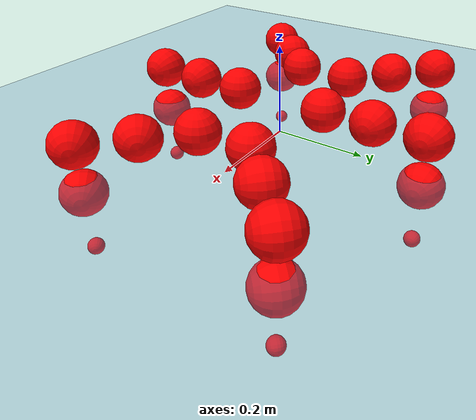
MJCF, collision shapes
<mujoco model="Golem">
  <compiler angle="radian" assetdir="assets" balanceinertia="true" inertiafromgeom="false"/>

  <option timestep="0.005" density="1.2" viscosity="2e-05"/>

  <size nkey="1"/>

  <visual>
    <quality shadowsize="8192"/>
    <map shadowclip="0.5"/>
  </visual>

  <default>
    <default class="/">
      <joint armature="0.01" damping="0.01" frictionloss="0.01"/>
      <geom contype="0" conaffinity="0" group="1" solref="-1000 -80"/>
      <site size="0.01 0.005 0.005" group="5"/>
      <general forcelimited="true" biastype="affine" gainprm="25" biasprm="0 -25 -0.5"/>
      <default class="visual">
        <geom type="mesh" group="2"/>
      </default>
      <default class="collision">
        <geom group="3"/>
      </default>
      <default class="foot">
        <geom size="0.01 0 0" condim="6" group="4" priority="1" solimp="0.015 1 0.01"/>
      </default>
      <default class="reward_collision_sphere">
        <geom group="5" rgba="1 0 0 1"/>
      </default>
    </default>
  </default>

  <asset>
    <texture type="skybox" colorspace="auto" name="//unnamed_texture_0" builtin="gradient" rgb1="0.95 0.95 0.95" rgb2="0.95 0.95 0.95" width="100" height="600"/>
    <texture type="2d" colorspace="auto" name="texplane" builtin="checker" rgb1="0.345 0.575 0.748" rgb2="0.345 0.575 0.748" markrgb="1 1 1" width="512" height="512"/>
    <material name="MatPlane" class="/" texture="texplane" texuniform="true" texrepeat="2 2" specular="0.9"/>
    <mesh name="body" class="/" file="body.stl" scale="0.001 0.001 0.001"/>
    <mesh name="coxa" class="/" file="coxa.stl" scale="0.001 0.001 0.001"/>
    <mesh name="femur" class="/" file="femur.stl" scale="0.001 0.001 0.001"/>
    <mesh name="tibia" class="/" file="tibia.stl" scale="0.001 0.001 0.001"/>
    <mesh name="tarsus" class="/" file="tarsus.stl" scale="0.001 0.001 0.001"/>
  </asset>

  <worldbody>
    <geom name="floor" class="/" size="100 100 0.125" type="plane" group="0" material="MatPlane"/>
    <light name="toplight_shadow" class="/" pos="0 0 5" dir="0.0990148 0.0990148 -0.990148" type="directional" ambient="0.04 0.04 0.04" diffuse="0.55 0.55 0.55" specular="0.12 0.12 0.12"/>
    <light name="toplight_fill" class="/" pos="0 0 5" dir="0.0990148 0.0990148 -0.990148" type="directional" castshadow="false" ambient="0.04 0.04 0.04" diffuse="0.3 0.3 0.3" specular="0.08 0.08 0.08"/>
    <body name="trunk" pos="-0.00195181 0.00046211 -0.00263344" quat="1 -0.000593069 1.37694e-05 0.000272026">
      <inertial pos="-0.00081472 -0.00280654 -0.000360373" quat="0.999998 -0.000623128 6.00315e-07 -0.00193867" mass="6.05537" diaginertia="0.0318518 0.0156254 0.0236664"/>
      <joint name="//unnamed_joint_0" type="free"/>
      <geom name="//unnamed_geom_1" class="/" pos="0 0 0.0764931" quat="1 0 0 0" type="mesh" rgba="0.9 0.9 0.9 1" mesh="body"/>
      <site name="imu" class="/" pos="0.179563 -0.0132246 0.105969" size="0.0118828"/>
      <camera name="track" class="/" pos="0 -2.18713 0" quat="0.707107 0.707107 0 0" mode="trackcom"/>
      <camera name="ego_camera" class="/" pos="0.16589 0 0.11952" quat="-0.5 -0.5 0.5 0.5"/>
      <body name="coxa_RR" pos="-0.227875 -0.0896616 0.0769968" quat="0.382971 0.000182996 -0.000345222 -0.92376">
        <inertial pos="-0.00230782 -8.40111e-05 -0.00258605" quat="0.99994 -0.0105555 -0.00194729 0.00218936" mass="0.331356" diaginertia="0.0334155 0.0155162 0.0240391"/>
        <joint name="coxa_joint_RR" class="/" pos="0 0 0" axis="0.00780415 0.0020856 -0.999967" range="-3.19338 3.13193" armature="0.0102249" damping="0" frictionloss="0.0104112"/>
        <geom name="//unnamed_geom_2" class="/" type="mesh" rgba="0.2 0.2 0.2 1" mesh="coxa"/>
        <geom name="//unnamed_geom_3" class="reward_collision_sphere" size="0.0475313" pos="-0.0382824 0 0"/>
        <body name="femur_RR" pos="0.0760843 -0.00231276 -0.00255971" quat="0.499891 -0.499434 0.500412 0.500263">
          <inertial pos="-0.00290772 -0.000296122 -0.00142987" quat="0.999962 -0.0033329 -0.00711902 0.00369319" mass="0.335624" diaginertia="0.0341199 0.0159788 0.024052"/>
          <joint name="femur_joint_RR" class="/" pos="0 0 0" axis="0.00340647 0.0141332 -0.999894" range="-3.10892 3.13467" armature="0.0133977" damping="0.0203123" frictionloss="0.0109779"/>
          <geom name="//unnamed_geom_4" class="/" type="mesh" rgba="0.9 0.9 0.9 1" mesh="femur"/>
          <geom name="//unnamed_geom_5" class="reward_collision_sphere" size="0.0475313"/>
          <body name="tibia_RR" pos="0.00134128 -0.119427 0.00187693" quat="1.33187e-05 1 1.80034e-05 -4.94399e-05">
            <inertial pos="0.0024491 0.00147943 -0.0010469" quat="0.999999 -0.000655434 -0.000164059 -0.000788986" mass="0.347603" diaginertia="0.0336909 0.0154713 0.0244338"/>
            <joint name="tibia_joint_RR" class="/" pos="0 0 0" axis="0.00280365 0.000254497 0.999996" stiffness="0.00457123" range="-3.14002 3.13366" armature="0.0119828" damping="0.00814055" frictionloss="0.0105587"/>
            <geom name="//unnamed_geom_6" class="/" type="mesh" rgba="0.2 0.2 0.2 1" mesh="tibia"/>
            <geom name="//unnamed_geom_7" class="reward_collision_sphere" size="0.0475313"/>
            <body name="tarsus_RR" pos="0.114096 -3.7802e-05 -0.00055382" quat="1 -8.53744e-05 -3.46822e-05 0.000170859">
              <inertial pos="0.0744844 0.000947044 -5.42006e-05" quat="0.48918 0.504989 0.502934 0.502739" mass="0.340162" diaginertia="0.0336113 0.0151053 0.0246751"/>
              <joint name="tarsus_joint_RR" class="/" pos="0 0 0" axis="0.0161593 -0.00208849 0.999867" range="-3.11352 3.10476" armature="0.0116641" damping="0.0123978" frictionloss="0.0113109"/>
              <geom name="//unnamed_geom_8" class="/" type="mesh" rgba="0.9 0.9 0.9 1" mesh="tarsus"/>
              <geom name="foot_1" class="foot" size="0.0127542" pos="0.142921 0 0" quat="0 -0.707107 0 0.707107"/>
              <geom name="//unnamed_geom_10" class="reward_collision_sphere" size="0.0475313"/>
              <geom name="//unnamed_geom_11" class="reward_collision_sphere" size="0.0178242" pos="0.137179 0 0"/>
              <site name="foot_1" class="foot" pos="0.142921 0 0" quat="0 -0.707107 0 0.707107" size="0.0118828"/>
            </body>
          </body>
        </body>
      </body>
      <body name="coxa_RM" pos="7.41711e-05 -0.146629 0.0817456" quat="0.706358 -0.000746221 0.000445329 -0.707854">
        <inertial pos="-0.000223438 -0.00244492 -0.00108159" quat="0.999988 0.00264993 0.00136411 -0.00392208" mass="0.344005" diaginertia="0.0352266 0.0156289 0.0249725"/>
        <joint name="coxa_joint_RM" class="/" pos="0 0 0" axis="-0.0131008 -0.00718379 -0.999888" range="-3.17386 3.16427" armature="0.0117101" damping="0.0201226" frictionloss="0.0114868"/>
        <geom name="//unnamed_geom_12" class="/" type="mesh" rgba="0.2 0.2 0.2 1" mesh="coxa"/>
        <geom name="//unnamed_geom_13" class="reward_collision_sphere" size="0.0475313" pos="-0.0382824 0 0"/>
        <body name="femur_RM" pos="0.0761684 0.000645936 -0.000402916" quat="0.500059 -0.499985 0.499992 0.499964">
          <inertial pos="0.000526526 -0.00260777 0.00152754" quat="0.999998 0.000272803 0.00167522 -0.000971595" mass="0.338018" diaginertia="0.0335353 0.0156576 0.0252015"/>
          <joint name="femur_joint_RM" class="/" pos="0 0 0" axis="-0.0110301 -0.00783376 -0.999908" stiffness="0.0105528" range="-3.0956 3.13402" armature="0.0135292" damping="0.0241277" frictionloss="0.0117753"/>
          <geom name="//unnamed_geom_14" class="/" type="mesh" rgba="0.9 0.9 0.9 1" mesh="femur"/>
          <geom name="//unnamed_geom_15" class="reward_collision_sphere" size="0.0475313"/>
          <body name="tibia_RM" pos="-0.00154984 -0.115382 -0.00158444" quat="-0.000528031 0.999999 -0.000763498 -0.000948813">
            <inertial pos="0.000767893 0.00251443 -7.08898e-05" quat="0.999999 0.0011647 0.000743817 -0.000413966" mass="0.346078" diaginertia="0.035837 0.0166724 0.0254394"/>
            <joint name="tibia_joint_RM" class="/" pos="0 0 0" axis="-0.000728455 -0.00164283 0.999998" range="-3.08498 3.12843" armature="0.0112123" damping="0" frictionloss="0.0135173"/>
            <geom name="//unnamed_geom_16" class="/" type="mesh" rgba="0.2 0.2 0.2 1" mesh="tibia"/>
            <geom name="//unnamed_geom_17" class="reward_collision_sphere" size="0.0475313"/>
            <body name="tarsus_RM" pos="0.110225 -0.00310383 0.000415347" quat="1 -0.000473459 0.000241389 9.93026e-05">
              <inertial pos="0.0744261 -0.000756551 0.00213331" quat="0.505362 0.500678 0.498584 0.495323" mass="0.347946" diaginertia="0.0359418 0.0161267 0.025572"/>
              <joint name="tarsus_joint_RM" class="/" pos="0 0 0" axis="0.0118418 -0.00313194 0.999925" range="-3.1476 3.15416" armature="0.0115472" damping="0.0115954" frictionloss="0.0105772"/>
              <geom name="//unnamed_geom_18" class="/" type="mesh" rgba="0.9 0.9 0.9 1" mesh="tarsus"/>
              <geom name="foot_2" class="foot" size="0.013003" pos="0.142921 0 0" quat="0 -0.707107 0 0.707107"/>
              <geom name="//unnamed_geom_20" class="reward_collision_sphere" size="0.0475313"/>
              <geom name="//unnamed_geom_21" class="reward_collision_sphere" size="0.0178242" pos="0.137179 0 0"/>
              <site name="foot_2" class="foot" pos="0.142921 0 0" quat="0 -0.707107 0 0.707107" size="0.0118828"/>
            </body>
          </body>
        </body>
      </body>
      <body name="coxa_RF" pos="0.230576 -0.0878966 0.0769123" quat="0.923655 1.15252e-05 -0.00104501 -0.383223">
        <inertial pos="0.00289162 0.00214515 0.00178832" quat="0.999924 -0.00178744 0.00581927 -0.0107141" mass="0.335746" diaginertia="0.0337307 0.0164526 0.0256959"/>
        <joint name="coxa_joint_RF" class="/" pos="0 0 0" axis="-0.0148817 0.00596404 -0.999871" range="-3.13893 3.17443" armature="0.0116941" damping="0.00327476" frictionloss="0.0122615"/>
        <geom name="//unnamed_geom_22" class="/" type="mesh" rgba="0.2 0.2 0.2 1" mesh="coxa"/>
        <geom name="//unnamed_geom_23" class="reward_collision_sphere" size="0.0475313" pos="-0.0382824 0 0"/>
        <body name="femur_RF" pos="0.0749586 -0.00208414 -0.00240007" quat="0.499817 -0.500345 0.49983 0.500008">
          <inertial pos="0.00118362 -4.97677e-05 0.00118437" quat="0.99993 -0.00494556 0.00450899 -0.0097641" mass="0.339637" diaginertia="0.0337244 0.016424 0.025423"/>
          <joint name="femur_joint_RF" class="/" pos="0 0 0" axis="0.0041679 0.000864796 -0.999991" range="-3.14565 3.1762" armature="0.0118377" damping="0.00666731" frictionloss="0.0109469"/>
          <geom name="//unnamed_geom_24" class="/" type="mesh" rgba="0.9 0.9 0.9 1" mesh="femur"/>
          <geom name="//unnamed_geom_25" class="reward_collision_sphere" size="0.0475313"/>
          <body name="tibia_RF" pos="-0.00162776 -0.11854 0.00290059" quat="0.000312102 1 0.000280364 3.9674e-07">
            <inertial pos="0.00195456 -0.00258456 0.000184907" quat="0.999988 0.00215469 0.00338902 0.002976" mass="0.322765" diaginertia="0.033881 0.0152447 0.0242376"/>
            <joint name="tibia_joint_RF" class="/" pos="0 0 0" axis="-0.00609707 -0.00056662 0.999981" range="-3.13592 3.14235" armature="0.0128769" damping="0.0140586" frictionloss="0.0119819"/>
            <geom name="//unnamed_geom_26" class="/" type="mesh" rgba="0.2 0.2 0.2 1" mesh="tibia"/>
            <geom name="//unnamed_geom_27" class="reward_collision_sphere" size="0.0475313"/>
            <body name="tarsus_RF" pos="0.110645 0.000179649 0.002182" quat="0.999999 -0.000436151 1.65275e-05 0.00117782">
              <inertial pos="0.079953 -0.000268399 0.00262107" quat="0.501356 0.499276 0.508706 0.490494" mass="0.3368" diaginertia="0.0335813 0.0153408 0.0250266"/>
              <joint name="tarsus_joint_RF" class="/" pos="0 0 0" axis="-0.00150776 0.00487017 0.999987" range="-3.16812 3.1401" armature="0.0118742" damping="0.0064869" frictionloss="0.010409"/>
              <geom name="//unnamed_geom_28" class="/" type="mesh" rgba="0.9 0.9 0.9 1" mesh="tarsus"/>
              <geom name="foot_3" class="foot" size="0.0124108" pos="0.142921 0 0" quat="0 -0.707107 0 0.707107"/>
              <geom name="//unnamed_geom_30" class="reward_collision_sphere" size="0.0475313"/>
              <geom name="//unnamed_geom_31" class="reward_collision_sphere" size="0.0178242" pos="0.137179 0 0"/>
              <site name="foot_3" class="foot" pos="0.142921 0 0" quat="0 -0.707107 0 0.707107" size="0.0118828"/>
            </body>
          </body>
        </body>
      </body>
      <body name="coxa_LR" pos="-0.226198 0.0919107 0.0772606" quat="0.382667 -0.000370727 -0.00122501 0.923886">
        <inertial pos="-0.00113663 -0.00196706 0.000692728" quat="1 0.00013085 -0.000394559 -0.000272611" mass="0.336511" diaginertia="0.0350795 0.0162215 0.0253916"/>
        <joint name="coxa_joint_LR" class="/" pos="0 0 0" axis="0.00779147 0.00796916 -0.999938" range="-3.19306 3.18927" armature="0.0102139" damping="0.0240121" frictionloss="0.0122152"/>
        <geom name="//unnamed_geom_32" class="/" type="mesh" rgba="0.2 0.2 0.2 1" mesh="coxa"/>
        <geom name="//unnamed_geom_33" class="reward_collision_sphere" size="0.0475313" pos="-0.0382824 0 0"/>
        <body name="femur_LR" pos="0.0741396 -0.00197078 0.00271224" quat="0.499508 -0.500168 0.501019 0.499304">
          <inertial pos="0.000239003 -0.00288132 0.00161917" quat="0.999909 0.000677138 0.00782056 -0.0109682" mass="0.347313" diaginertia="0.0343937 0.0158805 0.0245306"/>
          <joint name="femur_joint_LR" class="/" pos="0 0 0" axis="0.00652242 0.000350817 0.999979" stiffness="0.0100992" range="-3.11261 3.14343" armature="0.0120504" damping="0.00106329" frictionloss="0.0113173"/>
          <geom name="//unnamed_geom_34" class="/" type="mesh" rgba="0.9 0.9 0.9 1" mesh="femur"/>
          <geom name="//unnamed_geom_35" class="reward_collision_sphere" size="0.0475313"/>
          <body name="tibia_LR" pos="-0.00110544 -0.116091 -0.000254381" quat="0.000528175 0.999999 -0.00102841 -0.000566874">
            <inertial pos="0.00266046 -0.00100649 0.00225214" quat="1 -1.08334e-05 -8.86712e-05 -0.000370829" mass="0.34474" diaginertia="0.0351238 0.0159694 0.0239986"/>
            <joint name="tibia_joint_LR" class="/" pos="0 0 0" axis="-0.00114783 -0.000519634 -0.999999" range="-3.12215 3.12489" armature="0.0102466" damping="0.0125251" frictionloss="0.0114632"/>
            <geom name="//unnamed_geom_36" class="/" type="mesh" rgba="0.2 0.2 0.2 1" mesh="tibia"/>
            <geom name="//unnamed_geom_37" class="reward_collision_sphere" size="0.0475313"/>
            <body name="tarsus_LR" pos="0.111135 0.000852647 -0.00170115" quat="1 -6.7586e-05 -3.46268e-06 -0.000150755">
              <inertial pos="0.0760662 -0.000881762 -0.00278698" quat="0.499896 0.500195 0.499984 0.499925" mass="0.332386" diaginertia="0.0337125 0.01559 0.0250784"/>
              <joint name="tarsus_joint_LR" class="/" pos="0 0 0" axis="-0.000295082 -0.000147362 -1" range="-3.12476 3.1248" armature="0.013513" damping="0.0290705" frictionloss="0.0120071"/>
              <geom name="//unnamed_geom_38" class="/" type="mesh" rgba="0.9 0.9 0.9 1" mesh="tarsus"/>
              <geom name="foot_4" class="foot" size="0.0119904" pos="0.142921 0 0" quat="0.707107 0 -0.707107 0"/>
              <geom name="//unnamed_geom_40" class="reward_collision_sphere" size="0.0475313"/>
              <geom name="//unnamed_geom_41" class="reward_collision_sphere" size="0.0178242" pos="0.137179 0 0"/>
              <site name="foot_4" class="foot" pos="0.142921 0 0" quat="0.707107 0 -0.707107 0" size="0.0118828"/>
            </body>
          </body>
        </body>
      </body>
      <body name="coxa_LM" pos="-0.00315452 0.142147 0.0811796" quat="0.707189 -0.000606026 9.04328e-05 0.707025">
        <inertial pos="0.000466528 0.00025853 0.0031325" quat="0.999909 0.00267274 0.0131506 -0.00144054" mass="0.332547" diaginertia="0.0328874 0.0155132 0.0235747"/>
        <joint name="coxa_joint_LM" class="/" pos="0 0 0" axis="-0.00164792 -0.00453512 -0.999988" stiffness="0.00678108" range="-3.12895 3.13643" armature="0.0114287" damping="0" frictionloss="0.0104982"/>
        <geom name="//unnamed_geom_42" class="/" type="mesh" rgba="0.2 0.2 0.2 1" mesh="coxa"/>
        <geom name="//unnamed_geom_43" class="reward_collision_sphere" size="0.0475313" pos="-0.0382824 0 0"/>
        <body name="femur_LM" pos="0.0732965 0.000524683 0.000649955" quat="0.500069 -0.499961 0.500035 0.499935">
          <inertial pos="0.00208042 0.000267552 -0.00259802" quat="0.999916 -0.000767659 0.0102762 -0.0078364" mass="0.331972" diaginertia="0.0354582 0.016033 0.0251386"/>
          <joint name="femur_joint_LM" class="/" pos="0 0 0" axis="0.00165268 -0.00331641 0.999993" range="-3.14825 3.08351" armature="0.0104891" damping="0.025707" frictionloss="0.0118459"/>
          <geom name="//unnamed_geom_44" class="/" type="mesh" rgba="0.9 0.9 0.9 1" mesh="femur"/>
          <geom name="//unnamed_geom_45" class="reward_collision_sphere" size="0.0475313"/>
          <body name="tibia_LM" pos="-0.00210093 -0.113315 0.000580904" quat="-0.000940836 0.999999 -0.0005703 9.34751e-05">
            <inertial pos="0.000415699 5.32253e-05 -2.36796e-05" quat="0.999916 0.00016584 0.0112403 0.00645769" mass="0.34066" diaginertia="0.0335515 0.0153986 0.0250066"/>
            <joint name="tibia_joint_LM" class="/" pos="0 0 0" axis="0.000247749 -1.93424e-05 -1" stiffness="0.00589896" range="-3.09075 3.08409" armature="0.0108246" damping="0.00953611" frictionloss="0.0130862"/>
            <geom name="//unnamed_geom_46" class="/" type="mesh" rgba="0.2 0.2 0.2 1" mesh="tibia"/>
            <geom name="//unnamed_geom_47" class="reward_collision_sphere" size="0.0475313"/>
            <body name="tarsus_LM" pos="0.112266 -0.000217178 -0.00317792" quat="0.999999 -0.000533458 -0.00136785 -0.000143926">
              <inertial pos="0.0756717 -8.92134e-05 -0.00218755" quat="0.498465 0.500152 0.49858 0.502791" mass="0.34715" diaginertia="0.0337504 0.0156286 0.0242867"/>
              <joint name="tarsus_joint_LM" class="/" pos="0 0 0" axis="-0.0093468 -0.00221288 -0.999954" range="-3.11081 3.13828" armature="0.0134484" damping="0.00798383" frictionloss="0.0119407"/>
              <geom name="//unnamed_geom_48" class="/" type="mesh" rgba="0.9 0.9 0.9 1" mesh="tarsus"/>
              <geom name="foot_5" class="foot" size="0.0109838" pos="0.142921 0 0" quat="0.707107 0 -0.707107 0"/>
              <geom name="//unnamed_geom_50" class="reward_collision_sphere" size="0.0475313"/>
              <geom name="//unnamed_geom_51" class="reward_collision_sphere" size="0.0178242" pos="0.137179 0 0"/>
              <site name="foot_5" class="foot" pos="0.142921 0 0" quat="0.707107 0 -0.707107 0" size="0.0118828"/>
            </body>
          </body>
        </body>
      </body>
      <body name="coxa_LF" pos="0.228123 0.0910049 0.0794799" quat="0.923881 -0.000962464 -0.000795756 0.382677">
        <inertial pos="0.000349363 0.00136925 -0.000562405" quat="0.999999 0.00108662 0.000129931 0.000106886" mass="0.338469" diaginertia="0.0334895 0.0149511 0.0234066"/>
        <joint name="coxa_joint_LF" class="/" pos="0 0 0" axis="0.00578677 0.00658712 -0.999962" range="-3.10701 3.14654" armature="0.0133943" damping="0.0109247" frictionloss="0.0113668"/>
        <geom name="//unnamed_geom_52" class="/" type="mesh" rgba="0.2 0.2 0.2 1" mesh="coxa"/>
        <geom name="//unnamed_geom_53" class="reward_collision_sphere" size="0.0475313" pos="-0.0382824 0 0"/>
        <body name="femur_LF" pos="0.0758494 -0.00140992 -0.00204898" quat="0.499376 -0.500113 0.500205 0.500306">
          <inertial pos="-0.00104089 0.00211768 -0.000313095" quat="0.999944 -0.00505119 0.00300182 -0.00876912" mass="0.347725" diaginertia="0.0360279 0.0160716 0.0246796"/>
          <joint name="femur_joint_LF" class="/" pos="0 0 0" axis="0.00185883 -0.0134909 0.999907" stiffness="0.0164761" range="-3.17608 3.13834" armature="0.0131044" damping="0.00843869" frictionloss="0.0115268"/>
          <geom name="//unnamed_geom_54" class="/" type="mesh" rgba="0.9 0.9 0.9 1" mesh="femur"/>
          <geom name="//unnamed_geom_55" class="reward_collision_sphere" size="0.0475313"/>
          <body name="tibia_LF" pos="0.0023475 -0.120481 -0.000463444" quat="2.54486e-05 1 -0.000130347 0.000342862">
            <inertial pos="-0.000462693 -0.000422941 -0.00167735" quat="0.999913 0.00223469 -0.0130193 -0.000242694" mass="0.331531" diaginertia="0.0332835 0.015879 0.0236458"/>
            <joint name="tibia_joint_LF" class="/" pos="0 0 0" axis="0.000742001 -0.0133477 -0.999911" stiffness="0.00387177" range="-3.10106 3.14688" armature="0.0108467" damping="0" frictionloss="0.0105943"/>
            <geom name="//unnamed_geom_56" class="/" type="mesh" rgba="0.2 0.2 0.2 1" mesh="tibia"/>
            <geom name="//unnamed_geom_57" class="reward_collision_sphere" size="0.0475313"/>
            <body name="tarsus_LF" pos="0.11007 0.0017594 0.00171272" quat="1 0.000274109 0.000101597 -3.36657e-05">
              <inertial pos="0.0746082 -0.00165679 -0.000407129" quat="0.498598 0.503873 0.499056 0.498452" mass="0.331808" diaginertia="0.0335233 0.0154563 0.0236284"/>
              <joint name="tarsus_joint_LF" class="/" pos="0 0 0" axis="0.00270827 0.00225478 -0.999994" range="-3.15438 3.1524" armature="0.0135071" damping="0.0242738" frictionloss="0.0133702"/>
              <geom name="//unnamed_geom_58" class="/" type="mesh" rgba="0.9 0.9 0.9 1" mesh="tarsus"/>
              <geom name="foot_6" class="foot" size="0.0127296" pos="0.142921 0 0" quat="0.707107 0 -0.707107 0"/>
              <geom name="//unnamed_geom_60" class="reward_collision_sphere" size="0.0475313"/>
              <geom name="//unnamed_geom_61" class="reward_collision_sphere" size="0.0178242" pos="0.137179 0 0"/>
              <site name="foot_6" class="foot" pos="0.142921 0 0" quat="0.707107 0 -0.707107 0" size="0.0118828"/>
            </body>
          </body>
        </body>
      </body>
    </body>
  </worldbody>

  <contact>
    <pair class="/" geom1="floor" geom2="foot_1" name="//unnamed_contact_0"/>
    <pair class="/" geom1="floor" geom2="foot_2" name="//unnamed_contact_1"/>
    <pair class="/" geom1="floor" geom2="foot_3" name="//unnamed_contact_2"/>
    <pair class="/" geom1="floor" geom2="foot_4" name="//unnamed_contact_3"/>
    <pair class="/" geom1="floor" geom2="foot_5" name="//unnamed_contact_4"/>
    <pair class="/" geom1="floor" geom2="foot_6" name="//unnamed_contact_5"/>
  </contact>

  <actuator>
    <general name="coxa_joint_RR" class="/" joint="coxa_joint_RR" forcerange="-8.033 8.033" gainprm="28.1737" biasprm="0 -28.1737 -0.614632"/>
    <general name="femur_joint_RR" class="/" joint="femur_joint_RR" forcerange="-8.39925 8.39925" gainprm="28.1737" biasprm="0 -28.1737 -0.614632"/>
    <general name="tibia_joint_RR" class="/" joint="tibia_joint_RR" forcerange="-8.61489 8.61489" gainprm="28.1737" biasprm="0 -28.1737 -0.614632"/>
    <general name="tarsus_joint_RR" class="/" joint="tarsus_joint_RR" forcerange="-8.65416 8.65416" gainprm="28.1737" biasprm="0 -28.1737 -0.614632"/>
    <general name="coxa_joint_RM" class="/" joint="coxa_joint_RM" forcerange="-8.72967 8.72967" gainprm="28.1737" biasprm="0 -28.1737 -0.614632"/>
    <general name="femur_joint_RM" class="/" joint="femur_joint_RM" forcerange="-8.39365 8.39365" gainprm="28.1737" biasprm="0 -28.1737 -0.614632"/>
    <general name="tibia_joint_RM" class="/" joint="tibia_joint_RM" forcerange="-8.51465 8.51465" gainprm="28.1737" biasprm="0 -28.1737 -0.614632"/>
    <general name="tarsus_joint_RM" class="/" joint="tarsus_joint_RM" forcerange="-8.20148 8.20148" gainprm="28.1737" biasprm="0 -28.1737 -0.614632"/>
    <general name="coxa_joint_RF" class="/" joint="coxa_joint_RF" forcerange="-8.77013 8.77013" gainprm="28.1737" biasprm="0 -28.1737 -0.614632"/>
    <general name="femur_joint_RF" class="/" joint="femur_joint_RF" forcerange="-8.68271 8.68271" gainprm="28.1737" biasprm="0 -28.1737 -0.614632"/>
    <general name="tibia_joint_RF" class="/" joint="tibia_joint_RF" forcerange="-8.71871 8.71871" gainprm="28.1737" biasprm="0 -28.1737 -0.614632"/>
    <general name="tarsus_joint_RF" class="/" joint="tarsus_joint_RF" forcerange="-7.97125 7.97125" gainprm="28.1737" biasprm="0 -28.1737 -0.614632"/>
    <general name="coxa_joint_LR" class="/" joint="coxa_joint_LR" forcerange="-7.81206 7.81206" gainprm="28.1737" biasprm="0 -28.1737 -0.614632"/>
    <general name="femur_joint_LR" class="/" joint="femur_joint_LR" forcerange="-8.47105 8.47105" gainprm="28.1737" biasprm="0 -28.1737 -0.614632"/>
    <general name="tibia_joint_LR" class="/" joint="tibia_joint_LR" forcerange="-9.05251 9.05251" gainprm="28.1737" biasprm="0 -28.1737 -0.614632"/>
    <general name="tarsus_joint_LR" class="/" joint="tarsus_joint_LR" forcerange="-8.60792 8.60792" gainprm="28.1737" biasprm="0 -28.1737 -0.614632"/>
    <general name="coxa_joint_LM" class="/" joint="coxa_joint_LM" forcerange="-8.97867 8.97867" gainprm="28.1737" biasprm="0 -28.1737 -0.614632"/>
    <general name="femur_joint_LM" class="/" joint="femur_joint_LM" forcerange="-7.79546 7.79546" gainprm="28.1737" biasprm="0 -28.1737 -0.614632"/>
    <general name="tibia_joint_LM" class="/" joint="tibia_joint_LM" forcerange="-8.61279 8.61279" gainprm="28.1737" biasprm="0 -28.1737 -0.614632"/>
    <general name="tarsus_joint_LM" class="/" joint="tarsus_joint_LM" forcerange="-9.46404 9.46404" gainprm="28.1737" biasprm="0 -28.1737 -0.614632"/>
    <general name="coxa_joint_LF" class="/" joint="coxa_joint_LF" forcerange="-7.84413 7.84413" gainprm="28.1737" biasprm="0 -28.1737 -0.614632"/>
    <general name="femur_joint_LF" class="/" joint="femur_joint_LF" forcerange="-9.21472 9.21472" gainprm="28.1737" biasprm="0 -28.1737 -0.614632"/>
    <general name="tibia_joint_LF" class="/" joint="tibia_joint_LF" forcerange="-8.76075 8.76075" gainprm="28.1737" biasprm="0 -28.1737 -0.614632"/>
    <general name="tarsus_joint_LF" class="/" joint="tarsus_joint_LF" forcerange="-9.29781 9.29781" gainprm="28.1737" biasprm="0 -28.1737 -0.614632"/>
  </actuator>

  <sensor>
    <gyro site="imu" name="imu_angular_velocity"/>
    <velocimeter site="imu" name="imu_linear_velocity"/>
    <framelinvel objtype="site" objname="foot_1" name="foot_1_global_linear_velocity"/>
    <framelinvel objtype="site" objname="foot_2" name="foot_2_global_linear_velocity"/>
    <framelinvel objtype="site" objname="foot_3" name="foot_3_global_linear_velocity"/>
    <framelinvel objtype="site" objname="foot_4" name="foot_4_global_linear_velocity"/>
    <framelinvel objtype="site" objname="foot_5" name="foot_5_global_linear_velocity"/>
    <framelinvel objtype="site" objname="foot_6" name="foot_6_global_linear_velocity"/>
  </sensor>

  <keyframe>
    <key name="home" qpos="0 0 0.1457 1 0 0 0 0 0 0 0 0 0 0 0 0 0 0 0 0 0 0 0 0 0 0 0 0 0 0 0"/>
  </keyframe>
</mujoco>
